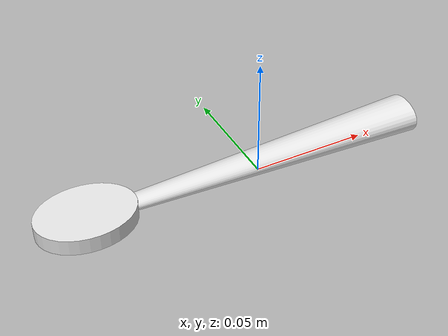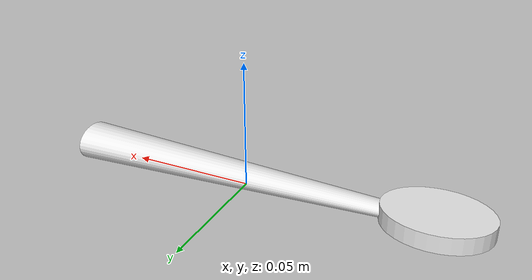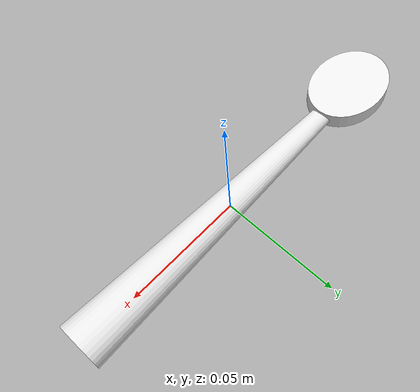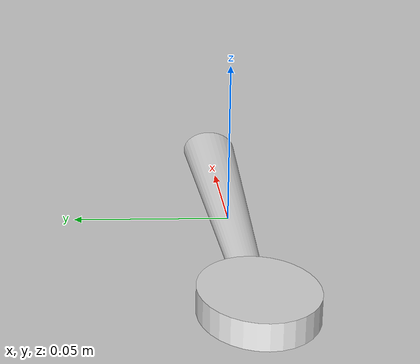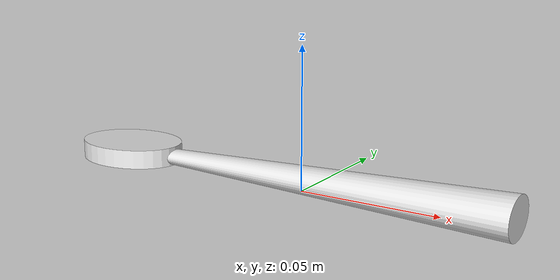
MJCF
<mujoco model="spoon">
    <compiler angle="radian" meshdir="./spoon/meshes" autolimits="true" />
    <default>
        <default class="spoon_collision">
            <geom rgba="0.9 0.9 0.9 1.0" />
        </default>
    </default>
    <asset>
        <mesh name="UCX_Spoon_001" file="stl/UCX_Spoon_001.stl" />
        <mesh name="UCX_Spoon_002" file="stl/UCX_Spoon_002.stl" />
    </asset>

    <worldbody>
        <body name="spoon" >
            <freejoint />
            <geom name="UCX_Spoon_001" type="mesh" mesh="UCX_Spoon_001" class="spoon_collision"/>
            <geom name="UCX_Spoon_002" type="mesh" mesh="UCX_Spoon_002" class="spoon_collision"/>
        </body>
    </worldbody>
</mujoco>
